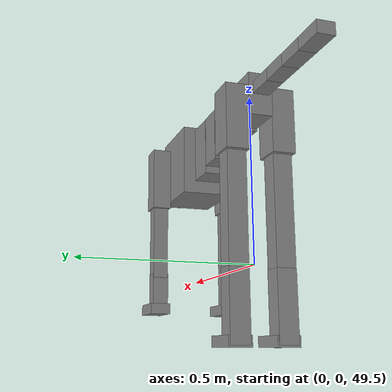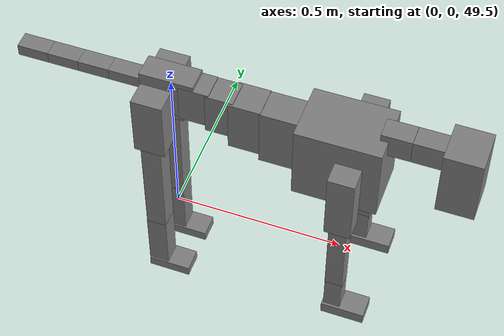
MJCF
<mujoco model="dog">

    <default>
        <joint armature="0.02" stiffness="1" damping="0.2" limited="true"/>
        <geom condim="3" friction="1 0.05 0.05" margin="0.01"/>
        <motor ctrllimited="true" ctrlrange="-1.0 1.0" forcelimited="true" gear="50"/>
    </default>

    <compiler inertiafromgeom="true" angle="radian"/>

    <option timestep="0.016" iterations="50" tolerance="1e-10" solver="Newton" jacobian="dense" cone="pyramidal"/>

    <size nconmax="20000" njmax="60000" nstack="5000000"/>
    <visual>
        <map force="0.1" zfar="30"/>
        <rgba haze="0.15 0.25 0.35 1"/>
        <quality shadowsize="2048"/>
        <global offwidth="800" offheight="800"/>
    </visual>

    <asset>
        <texture type="skybox" builtin="gradient" rgb1="0.3 0.5 0.7" rgb2="0 0 0" width="512" height="512"/>
        <texture name="texplane" type="2d" builtin="checker" rgb1=".2 .3 .4" rgb2=".1 0.15 0.2" width="512" height="512"
                 mark="cross" markrgb=".8 .8 .8"/>
        <texture name="texgeom" type="cube" builtin="flat" mark="cross" width="127" height="1278" rgb1="0.8 0.6 0.4"
                 rgb2="0.8 0.6 0.4" markrgb="1 1 1" random="0.01"/>

        <material name="matplane" reflectance="0.3" texture="texplane" texrepeat="1 1" texuniform="true"/>
        <material name="matgeom" texture="texgeom" texuniform="true" rgba="0.8 0.6 .4 1"/>
    </asset>

    <worldbody>
        <geom name="floor" pos="0 0 0" size="0 0 .25" type="plane" material="matplane" condim="3"/>

        <light directional="false" diffuse=".2 .2 .2" specular="0 0 0" pos="0 0 5" dir="0 0 -1" castshadow="false"/>
        <light mode="targetbodycom" target="torso" directional="false" diffuse=".8 .8 .8" specular="0.3 0.3 0.3"
               pos="0 0 4.0" dir="0 0 -1"/>

        <body name="root" pos="0 0 50">
            <freejoint name="root_1"/>
            <geom type="box" pos="0 0 -0.02" size="0.0774  0.0358  0.063" density="2030"/>

            <body name="spine1" pos="0.054 0 0">
                <joint name="spine1_y" axis="0 1 0" range="0 0.7" limited="true"/>
                <geom type="box" pos="0.02375 0 -0.03" size="0.04375  0.0375  0.05985" density="2030"/>

                <body name="spine2" pos="0.0612 0 0">
                    <joint name="spine2_y" axis="0 1 0" range="-0.15 0.15" limited="true"/>
                    <geom type="box" pos="0.03555  0  -0.04" size="0.04055  0.039  0.06615" density="2030"/>

                    <body name="spine3" pos="0.0730 0 0">
                        <joint name="spine3_y" axis="0 1 0" range="-0.15 0.15" limited="true"/>
                        <geom type="box" pos="0.03555  0  -0.057" size="0.04555  0.0445  0.081" density="2030"/>

                        <body name="spine4" pos="0.0780 0 0">
                            <joint name="spine4_y" axis="0 1 0" range="-0.15 0.15" limited="true"/>
                            <geom type="box" pos="0.05265  0  -0.07" size="0.05265  0.045  0.09135" density="2030"/>

                            <body name="torso" pos="0.1082 0 0">
                                <joint name="torso_y" axis="0 1 0" range="-0.15 0.15" limited="true"/>
                                <geom type="box" pos="0.11925  0  -0.085" size="0.11925  0.085  0.11745"
                                      density="2030"/>

                                <body name="neck1" pos="0.2160  0   0.0180">
                                    <joint name="neck1_y" axis="0 1 0" range="-1.2  -1" limited="true"/>
                                    <geom type="box" pos="0.0423  0  0" size="0.0423  0.03  0.036" density="2325"/>

                                    <body name="neck2" pos="0.0853  0  0">
                                        <joint name="neck2_y" axis="0 1 0" range="0.1  0" limited="true"/>
                                        <geom type="box" pos="0.0423  0  0" size="0.0423  0.03  0.036" density="2325"/>

                                        <body name="head" pos="0.0853  0  0">
                                            <joint name="head_y" axis="0 1 0" range="-0.3  -0.2" limited="true"/>
                                            <geom type="box" pos="0.0531  0  -0.055" size="0.0531  0.06  0.1044"
                                                  density="4030"/>

                                        </body>
                                    </body>
                                </body>

                                <body name="front_shoulder" pos="0.156  0   -0.0480">
                                    <joint name="front_shoulder_y" axis="0 1 0" range="-1 1.5" limited="true"/>
                                    <geom type="box" pos="0 0.13 -0.0803" size="0.0371  0.0317  0.1069" density="1158"/>
                                    <geom type="box" pos="0 -0.13 -0.0803" size="0.0371  0.0317  0.1069"
                                          density="1158"/>

                                    <body name="front_elbow" pos="0  0  -0.1606">
                                        <joint name="front_elbow_y" axis="0 1 0" range="-2 0" limited="true"/>
                                        <geom type="box" pos="0 0.13 -0.1368" size="0.0249  0.0255  0.1368"
                                              density="1081"/>
                                        <geom type="box" pos="0 -0.13 -0.1368" size="0.0249  0.0255  0.1368"
                                              density="1081"/>

                                        <body name="front_wrist" pos="0  0  -0.2735">
                                            <joint name="front_wrist_y" axis="0 1 0" range="-0.2 0" limited="true"/>
                                            <geom type="box" pos="0 0.13 -0.0525" size="0.0241  0.0268  0.0656"
                                                  density="1664"/>
                                            <geom type="box" pos="0 -0.13 -0.0525" size="0.0241  0.0268  0.0656"
                                                  density="1664"/>

                                            <body name="front_finger_end" pos="0  0  -0.1049">
                                                <joint name="front_finger_y" axis="0 1 0" range="-0.4 1"
                                                       limited="true"/>
                                                <geom type="box" pos="0.0341  0.13  -0.0029"
                                                      size="0.0625  0.0341  0.0179" density="1515"/>
                                                <geom type="box" pos="0.0341  -0.13  -0.0029"
                                                      size="0.0625  0.0341  0.0179" density="1515"/>

                                            </body>

                                        </body>
                                    </body>
                                </body>

                            </body>
                        </body>
                    </body>
                </body>
            </body>

            <body name="back_hip" pos="-0.03 0 -0.018">
                <joint name="back_hip_y" axis="0 1 0" range="-1.5 0.3" limited="true"/>
                <geom type="box" pos="0 0.07 -0.0731" size="0.0448  0.0351  0.0959" density="1154"/>
                <geom type="box" pos="0 -0.07 -0.0731" size="0.0448  0.0351  0.0959" density="1154"/>

                <body name="back_knee" pos="0  0  -0.1461">
                    <joint name="back_knee_y" axis="0 1 0" range="0 2.8" limited="true"/>
                    <geom type="box" pos="0 0.07 -0.1797" size="0.0294  0.0290  0.1952" density="1227"/>
                    <geom type="box" pos="0 -0.07 -0.1797" size="0.0294  0.0290  0.1952" density="1227"/>

                    <body name="back_ankle" pos="0  0  -0.3594">
                        <joint name="back_ankle_y" axis="0 1 0" range="-2.2 0" limited="true"/>
                        <geom type="box" pos="0 0.07 -0.0919" size="0.0297  0.0297  0.1032" density="1284"/>
                        <geom type="box" pos="0 -0.07 -0.0919" size="0.0297  0.0297  0.1032" density="1284"/>

                        <body name="back_toe_end" pos="0  0  -0.1839">
                            <joint name="back_toe_y" axis="0 1 0" range="-0.4 1" limited="true"/>
                            <geom type="box" pos="0.0341  0.07  -0.0010" size="0.0624  0.0341  0.0160" density="1515"/>
                            <geom type="box" pos="0.0341  -0.07  -0.0010" size="0.0624  0.0341  0.0160" density="1515"/>

                        </body>
                    </body>
                </body>
            </body>

            <body name="tail1" pos="-0.074 0 -0.006">
                <joint name="tail1_y" axis="0 1 0" range="-0.2 0.2" limited="true"/>
                <geom type="box" pos="-0.0536  0  0" size="0.045  0.025  0.0175" density="1587"/>

                <body name="tail2" pos="-0.09 0 0">
                    <joint name="tail2_y" axis="0 1 0" range="-0.2 0.2" limited="true"/>
                    <geom type="box" pos="-0.0536  0  0" size="0.045  0.025  0.0175" density="1587"/>

                    <body name="tail3" pos="-0.09 0 0">
                        <joint name="tail3_y" axis="0 1 0" range="-0.2 0.2" limited="true"/>
                        <geom type="box" pos="-0.0536  0  0" size="0.045  0.025  0.0175" density="1587"/>

                        <body name="tail4" pos="-0.09 0 0">
                            <joint name="tail4_y" axis="0 1 0" range="-0.2 0.2" limited="true"/>
                            <geom type="box" pos="-0.0536  0  0" size="0.045  0.025  0.0175" density="1587"/>

                        </body>
                    </body>
                </body>
            </body>
        </body>
    </worldbody>

    <actuator>
        <motor joint="spine1_y" forcerange="-150 150     "/>
        <motor joint="spine2_y" forcerange="-150 150     "/>
        <motor joint="spine3_y" forcerange="-150 150     "/>
        <motor joint="spine4_y" forcerange="-150 150     "/>
        <motor joint="torso_y" forcerange="-150 150     "/>
        <motor joint="neck1_y" forcerange="-100 100       "/>
        <motor joint="neck2_y" forcerange="-100 100       "/>
        <motor joint="head_y" forcerange="-150 150       "/>
        <motor joint="front_shoulder_y" forcerange="-164.00 147.53"/>
        <motor joint="front_elbow_y" forcerange="-153.88 131.62"/>
        <motor joint="front_wrist_y" forcerange="-104.84 109.72"/>
        <motor joint="front_finger_y" forcerange="-55.62 86.30"/>
        <motor joint="back_hip_y" forcerange="-384.02 284.54"/>
        <motor joint="back_knee_y" forcerange="-397.96 223.22"/>
        <motor joint="back_angle_y" forcerange="-192.47 183.02"/>
        <motor joint="back_toe_y" forcerange="-127.72 64.71"/>
        <motor joint="tail1_y" forcerange="-50 50     "/>
        <motor joint="tail2_y" forcerange="-50 50     "/>
        <motor joint="tail3_y" forcerange="-50 50     "/>
        <motor joint="tail4_y" forcerange="-50 50     "/>
    </actuator>
</mujoco>
